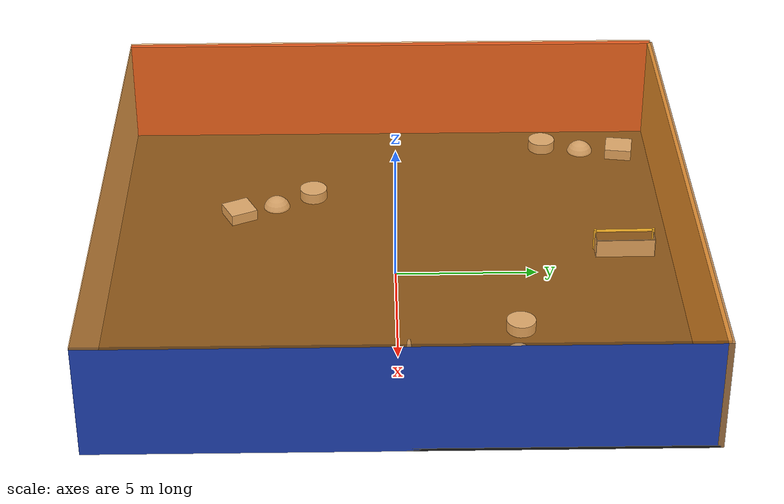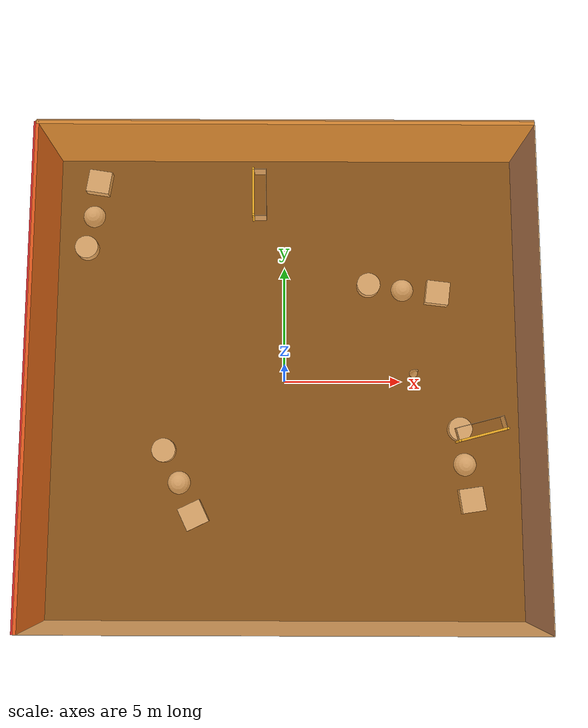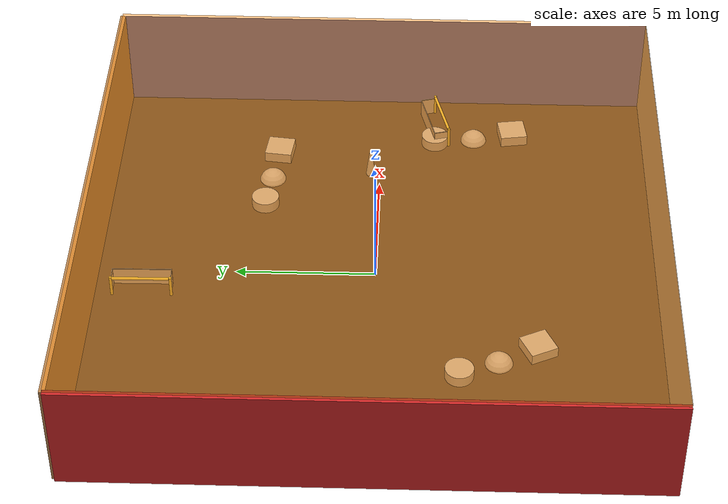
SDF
<sdf version="1.4">
 <world name="default">
  <physics type="ode">
   <max_step_size>0.001</max_step_size>
   <real_time_factor>1</real_time_factor>
   <real_time_update_rate>1000</real_time_update_rate>
   <gravity>0 0 -9.8</gravity>
  </physics>
  <scene><ambient>0.4 0.4 0.4 1</ambient><background>0.7 0.7 0.7 1</background><shadows>1</shadows></scene>
  <model name="Surrounding">
   <static>1</static>
   <link name="Ceiling">
    <collision name="Ceiling_Collision"><geometry><box><size>20 20 0.1</size></box></geometry></collision>
    <visual name="Ceiling_Visual">
     <geometry><box><size>20 20 0.1</size></box></geometry>
     <material>
      <script>
       <uri>file://media/materials/scripts/gazebo.material</uri>
       <name>Gazebo/OrangeTransparent</name>
      </script>
     </material>
    </visual>
    <pose>0 0 4.05 0 0 0</pose>
   </link>
   <link name="Wall_South">
    <collision name="Wall_South_Collision">
     <geometry><box><size>20 0 4</size></box></geometry>
     <pose>0 0 2 0 -0 0</pose>
    </collision>
    <visual name="Wall_South_Visual">
     <pose>0 0 2 0 -0 0</pose>
     <geometry><box><size>20 0 4</size></box></geometry>
     <material>
      <script><uri>file://media/materials/scripts/gazebo.material</uri><name>Gazebo/JointAnchor</name></script>
     </material>
    </visual>
    <velocity_decay><linear>0</linear><angular>0</angular></velocity_decay>
    <pose>0 -10 0 0 -0 0</pose>
   </link>
   <link name="Wall_East">
    <collision name="Wall_21_Collision">
     <geometry><box><size>20 0 4</size></box></geometry>
     <pose>0 0 2 0 -0 0</pose>
    </collision>
    <visual name="Wall_21_Visual">
     <pose>0 0 2 0 -0 0</pose>
     <geometry><box><size>20 0 4</size></box></geometry>
     <material>
      <script><uri>file://media/materials/scripts/gazebo.material</uri><name>Gazebo/BlueGlow</name></script>
     </material>
    </visual>
    <velocity_decay><linear>0</linear><angular>0</angular></velocity_decay>
    <pose>10 0 0 0 -0 1.5708</pose>
   </link>
   <link name="Wall_North">
    <collision name="Wall_22_Collision">
     <geometry><box><size>20 0.2 4</size></box></geometry>
     <pose>0 0 2 0 -0 0</pose>
    </collision>
    <visual name="Wall_22_Visual">
     <pose>0 0 2 0 -0 0</pose>
     <geometry><box><size>20 0.2 4</size></box></geometry>
     <material>
      <script><uri>file://media/materials/scripts/gazebo.material</uri><name>Gazebo/WoodFloor</name></script>
     </material>
    </visual>
    <velocity_decay><linear>0</linear><angular>0</angular></velocity_decay>
    <pose>0 10 0 0 -0 0</pose>
   </link>
   <link name="Wall_West">
    <collision name="Wall_23_Collision">
     <geometry><box><size>20 0.2 4</size></box></geometry>
     <pose>0 0 2 0 -0 0</pose>
    </collision>
    <visual name="Wall_23_Visual">
     <pose>0 0 2 0 -0 0</pose>
     <geometry><box><size>20 0.2 4</size></box></geometry>
     <material>
      <script><uri>file://media/materials/scripts/gazebo.material</uri><name>Gazebo/RedBright</name></script>
     </material>
    </visual>
    <velocity_decay><linear>0</linear><angular>0</angular></velocity_decay>
    <pose>-10 0 0 0 0 -1.5708</pose>
   </link>
   <link name="Ground_link">
    <collision name="collision">
     <pose>0 0 .05 0 -0 0</pose>
     <geometry><box><size>20 20 0.1</size></box></geometry>
    </collision>
    <visual name="visual">
     <pose>0 0 .05 0 -0 0</pose>
     <geometry><box><size>20 20 0.1</size></box></geometry>
     <material>
      <script><uri>file://media/materials/scripts/gazebo.material</uri><name>Gazebo/FlatBlack</name></script>
     </material>
    </visual>
   </link>
   <static>1</static>
  </model>
  <spherical_coordinates>
   <surface_model>EARTH_WGS84</surface_model>
   <latitude_deg>0</latitude_deg>
   <longitude_deg>0</longitude_deg>
   <elevation>0</elevation>
   <heading_deg>0</heading_deg>
  </spherical_coordinates>
  <light name="lightball_0" type="diffuse">
   <diffuse>0.8 0.8 0.8 1</diffuse>
   <specular>0.2 0.2 0.2 1</specular>
   <attenuation>
    <range>100</range>
    <constant>0.7</constant>
    <linear>0.01</linear>
    <quadratic>0.001</quadratic>
   </attenuation>
   <direction>-0.5 0.1 -0.9</direction>
   <pose>-3.81076467202 -4.50682934599 0.747189806692 0 0 0</pose>
  </light>
  <light name="lightball_1" type="diffuse">
   <diffuse>0.8 0.8 0.8 1</diffuse>
   <specular>0.2 0.2 0.2 1</specular>
   <attenuation>
    <range>100</range>
    <constant>0.7</constant>
    <linear>0.01</linear>
    <quadratic>0.001</quadratic>
   </attenuation>
   <direction>-0.5 0.1 -0.9</direction>
   <pose>8.09102388834 0.0923885359286 2.51468545269 0 0 0</pose>
  </light>
  <light name="lightball_2" type="diffuse">
   <diffuse>0.8 0.8 0.8 1</diffuse>
   <specular>0.2 0.2 0.2 1</specular>
   <attenuation>
    <range>100</range>
    <constant>0.7</constant>
    <linear>0.01</linear>
    <quadratic>0.001</quadratic>
   </attenuation>
   <direction>-0.5 0.1 -0.9</direction>
   <pose>-1.75106691912 3.54081756839 0.783585482673 0 0 0</pose>
  </light>
  <light name="lightball_3" type="diffuse">
   <diffuse>0.8 0.8 0.8 1</diffuse>
   <specular>0.2 0.2 0.2 1</specular>
   <attenuation>
    <range>100</range>
    <constant>0.7</constant>
    <linear>0.01</linear>
    <quadratic>0.001</quadratic>
   </attenuation>
   <direction>-0.5 0.1 -0.9</direction>
   <pose>6.62947378819 7.40253110195 3.80011770999 0 0 0</pose>
  </light>
  <light name="lightball_4" type="diffuse">
   <diffuse>0.8 0.8 0.8 1</diffuse>
   <specular>0.2 0.2 0.2 1</specular>
   <attenuation>
    <range>100</range>
    <constant>0.7</constant>
    <linear>0.01</linear>
    <quadratic>0.001</quadratic>
   </attenuation>
   <direction>-0.5 0.1 -0.9</direction>
   <pose>3.53983647494 9.11092695674 2.9209034573 0 0 0</pose>
  </light>
  <light name="lightball_5" type="diffuse">
   <diffuse>0.8 0.8 0.8 1</diffuse>
   <specular>0.2 0.2 0.2 1</specular>
   <attenuation>
    <range>100</range>
    <constant>0.7</constant>
    <linear>0.01</linear>
    <quadratic>0.001</quadratic>
   </attenuation>
   <direction>-0.5 0.1 -0.9</direction>
   <pose>-0.565881635136 -7.00152747586 3.84373353014 0 0 0</pose>
  </light>
  <light name="lightball_6" type="diffuse">
   <diffuse>0.8 0.8 0.8 1</diffuse>
   <specular>0.2 0.2 0.2 1</specular>
   <attenuation>
    <range>100</range>
    <constant>0.7</constant>
    <linear>0.01</linear>
    <quadratic>0.001</quadratic>
   </attenuation>
   <direction>-0.5 0.1 -0.9</direction>
   <pose>1.27025210512 3.3874970509 0.90505980568 0 0 0</pose>
  </light>
  <light name="lightball_7" type="diffuse">
   <diffuse>0.8 0.8 0.8 1</diffuse>
   <specular>0.2 0.2 0.2 1</specular>
   <attenuation>
    <range>100</range>
    <constant>0.7</constant>
    <linear>0.01</linear>
    <quadratic>0.001</quadratic>
   </attenuation>
   <direction>-0.5 0.1 -0.9</direction>
   <pose>-8.60328651788 0.609553535286 2.4815385814 0 0 0</pose>
  </light>
  <light name="lightball_8" type="diffuse">
   <diffuse>0.8 0.8 0.8 1</diffuse>
   <specular>0.2 0.2 0.2 1</specular>
   <attenuation>
    <range>100</range>
    <constant>0.7</constant>
    <linear>0.01</linear>
    <quadratic>0.001</quadratic>
   </attenuation>
   <direction>-0.5 0.1 -0.9</direction>
   <pose>-7.31784912701 -8.18406561665 3.30913195455 0 0 0</pose>
  </light>
  <light name="lightball_9" type="diffuse">
   <diffuse>0.8 0.8 0.8 1</diffuse>
   <specular>0.2 0.2 0.2 1</specular>
   <attenuation>
    <range>100</range>
    <constant>0.7</constant>
    <linear>0.01</linear>
    <quadratic>0.001</quadratic>
   </attenuation>
   <direction>-0.5 0.1 -0.9</direction>
   <pose>9.20428473553 0.0177263464102 0.756724420219 0 0 0</pose>
  </light>
  <light name="lightball_10" type="diffuse">
   <diffuse>0.8 0.8 0.8 1</diffuse>
   <specular>0.2 0.2 0.2 1</specular>
   <attenuation>
    <range>100</range>
    <constant>0.7</constant>
    <linear>0.01</linear>
    <quadratic>0.001</quadratic>
   </attenuation>
   <direction>-0.5 0.1 -0.9</direction>
   <pose>-0.966796326105 -1.00465106237 1.48006522339 0 0 0</pose>
  </light>
  <light name="lightball_11" type="diffuse">
   <diffuse>0.8 0.8 0.8 1</diffuse>
   <specular>0.2 0.2 0.2 1</specular>
   <attenuation>
    <range>100</range>
    <constant>0.7</constant>
    <linear>0.01</linear>
    <quadratic>0.001</quadratic>
   </attenuation>
   <direction>-0.5 0.1 -0.9</direction>
   <pose>-0.909594106127 -0.311811747574 1.73527334704 0 0 0</pose>
  </light>
  <light name="lightball_12" type="diffuse">
   <diffuse>0.8 0.8 0.8 1</diffuse>
   <specular>0.2 0.2 0.2 1</specular>
   <attenuation>
    <range>100</range>
    <constant>0.7</constant>
    <linear>0.01</linear>
    <quadratic>0.001</quadratic>
   </attenuation>
   <direction>-0.5 0.1 -0.9</direction>
   <pose>-2.94614779886 0.648580845358 2.11075259313 0 0 0</pose>
  </light>
  <include>
   <uri>model://textured_shapes</uri>
   <pose>-8.40302188457 7.3185323059 0 0 0 2.98804251977</pose>
  </include>
  <include>
   <uri>model://textured_shapes</uri>
   <pose>-4.44177037657 -4.33225306106 0 0 0 0.445554616578</pose>
  </include>
  <include>
   <uri>model://robocup_3Dsim_goal</uri>
   <pose>-1.37958033535 8.23172462627 0 0 0 0.0124755636383</pose>
  </include>
  <include>
   <uri>model://construction_cone</uri>
   <pose>5.54850035278 0.351408349186 0 0 0 1.50938488427</pose>
  </include>
  <include>
   <uri>model://textured_shapes</uri>
   <pose>5.11738482446 4.02109814799 0 0 0 1.45213950526</pose>
  </include>
  <include>
   <uri>model://textured_shapes</uri>
   <pose>7.66038464588 -3.53942641467 0 0 0 0.147428686063</pose>
  </include>
  <include>
   <uri>model://robocup_3Dsim_goal</uri>
   <pose>8.34880577551 -2.31767220345 0 0 0 1.82696037705</pose>
  </include>
 </world>
</sdf>

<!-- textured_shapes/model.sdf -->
<sdf version="1.6">
  <model name="textured_shapes">
    <pose>0 0 0.5 0 0 0</pose>
    <link name="box">
      <pose>0 -1.5 0 0 0 0</pose>
      <collision name="collision">
        <geometry>
          <box>
            <size>1 1 1</size>
          </box>
        </geometry>
      </collision>
      <visual name="visual">
        <geometry>
          <box>
            <size>1 1 1</size>
          </box>
        </geometry>
        <material>
          <script>
            <uri>model://../model_source/models/textured_shapes/materials/scripts</uri>
            <uri>model://../model_source/models/textured_shapes/materials/textures</uri>
            <name>TexturedShape/Squares</name>
          </script>
        </material>
      </visual>
    </link>
    <link name="sphere">
      <collision name="collision">
        <geometry>
          <sphere>
            <radius>0.5</radius>
          </sphere>
        </geometry>
      </collision>
      <visual name="visual">
        <geometry>
          <sphere>
            <radius>0.5</radius>
          </sphere>
        </geometry>
        <material>
          <script>
            <uri>model://../model_source/models/textured_shapes/materials/scripts</uri>
            <uri>model://../model_source/models/textured_shapes/materials/textures</uri>
            <name>TexturedShape/Squares</name>
          </script>
        </material>
      </visual>
    </link>
    <link name="cylinder">
      <pose>0 1.5 0 0 0 0</pose>
      <collision name="collision">
        <geometry>
          <cylinder>
            <radius>0.5</radius>
            <length>1</length>
          </cylinder>
        </geometry>
      </collision>
      <visual name="visual">
        <geometry>
          <cylinder>
            <radius>0.5</radius>
            <length>1</length>
          </cylinder>
        </geometry>
        <material>
          <script>
            <uri>model://../model_source/models/textured_shapes/materials/scripts</uri>
            <uri>model://../model_source/models/textured_shapes/materials/textures</uri>
            <name>TexturedShape/Squares</name>
          </script>
        </material>
      </visual>
    </link>
  </model>
</sdf>

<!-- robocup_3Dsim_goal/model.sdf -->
<sdf version="1.5">
  <model name="robocup_3d_goal">
    <static>true</static>
    <link name="left_post">
      <pose>0 1.05 0.45 0 0 0</pose>
      <collision name="collision">
        <geometry>
          <cylinder>
            <radius>0.05</radius>
            <length>0.9</length>
          </cylinder>
        </geometry>
      </collision>
      <visual name="visual">
        <geometry>
          <cylinder>
            <radius>0.05</radius>
            <length>0.9</length>
          </cylinder>
        </geometry>
        <material>
          <script>
            <uri>file://media/materials/scripts/gazebo.material</uri>
            <name>Gazebo/ZincYellow</name>
          </script>
        </material>
      </visual>
    </link>
    <link name="left_support_horiz_lower">
      <pose>0.30 1.05 0.01 0 0 0</pose>
      <collision name="collision">
        <geometry>
          <box>
            <size>0.50 0.02 0.02</size>
          </box>
        </geometry>
      </collision>
      <visual name="visual">
        <geometry>
          <box>
            <size>0.50 0.02 0.02</size>
          </box>
        </geometry>
        <material>
          <script>
            <uri>file://media/materials/scripts/gazebo.material</uri>
            <name>Gazebo/White</name>
          </script>
        </material>
      </visual>
    </link>
    <link name="left_support_horiz_upper">
      <pose>0.30 1.05 0.79 0 0 0</pose>
      <collision name="collision">
        <geometry>
          <box>
            <size>0.50 0.02 0.02</size>
          </box>
        </geometry>
      </collision>
      <visual name="visual">
        <geometry>
          <box>
            <size>0.50 0.02 0.02</size>
          </box>
        </geometry>
        <material>
          <script>
            <uri>file://media/materials/scripts/gazebo.material</uri>
            <name>Gazebo/White</name>
          </script>
        </material>
      </visual>
    </link>
    <link name="left_support_vertical">
      <pose>0.56 1.05 0.4 0 1.5708 0</pose>
      <collision name="collision">
        <geometry>
          <box>
            <size>0.80 0.02 0.02</size>
          </box>
        </geometry>
      </collision>
      <visual name="visual">
        <geometry>
          <box>
            <size>0.80 0.02 0.02</size>
          </box>
        </geometry>
        <material>
          <script>
            <uri>file://media/materials/scripts/gazebo.material</uri>
            <name>Gazebo/White</name>
          </script>
        </material>
      </visual>
    </link>
    <link name="right_support_horiz_lower">
      <pose>0.30 -1.05 0.01 0 0 0</pose>
      <collision name="collision">
        <geometry>
          <box>
            <size>0.50 0.02 0.02</size>
          </box>
        </geometry>
      </collision>
      <visual name="visual">
        <geometry>
          <box>
            <size>0.50 0.02 0.02</size>
          </box>
        </geometry>
        <material>
          <script>
            <uri>file://media/materials/scripts/gazebo.material</uri>
            <name>Gazebo/White</name>
          </script>
        </material>
      </visual>
    </link>
    <link name="right_support_horiz_upper">
      <pose>0.30 -1.05 0.79 0 0 0</pose>
      <collision name="collision">
        <geometry>
          <box>
            <size>0.50 0.02 0.02</size>
          </box>
        </geometry>
      </collision>
      <visual name="visual">
        <geometry>
          <box>
            <size>0.50 0.02 0.02</size>
          </box>
        </geometry>
        <material>
          <script>
            <uri>file://media/materials/scripts/gazebo.material</uri>
            <name>Gazebo/White</name>
          </script>
        </material>
      </visual>
    </link>
    <link name="right_support_vertical">
      <pose>0.56 -1.05 0.4 0 1.5708 0</pose>
      <collision name="collision">
        <geometry>
          <box>
            <size>0.80 0.02 0.02</size>
          </box>
        </geometry>
      </collision>
      <visual name="visual">
        <geometry>
          <box>
            <size>0.80 0.02 0.02</size>
          </box>
        </geometry>
        <material>
          <script>
            <uri>file://media/materials/scripts/gazebo.material</uri>
            <name>Gazebo/White</name>
          </script>
        </material>
      </visual>
    </link>
    <link name="center_support_horiz_lower">
      <pose>0.56 0 0.01 0 1.5708 0</pose>
      <collision name="collision">
        <geometry>
          <box>
            <size>0.02 2.08 0.02</size>
          </box>
        </geometry>
      </collision>
      <visual name="visual">
        <geometry>
          <box>
            <size>0.02 2.08 0.02</size>
          </box>
        </geometry>
        <material>
          <script>
            <uri>file://media/materials/scripts/gazebo.material</uri>
            <name>Gazebo/White</name>
          </script>
        </material>
      </visual>
    </link>
    <link name="center_support_horiz_upper">
      <pose>0.56 0 0.79 0 1.5708 0</pose>
      <collision name="collision">
        <geometry>
          <box>
            <size>0.02 2.08 0.02</size>
          </box>
        </geometry>
      </collision>
      <visual name="visual">
        <geometry>
          <box>
            <size>0.02 2.08 0.02</size>
          </box>
        </geometry>
        <material>
          <script>
            <uri>file://media/materials/scripts/gazebo.material</uri>
            <name>Gazebo/White</name>
          </script>
        </material>
      </visual>
    </link>
    <link name="right_post">
      <pose>0 -1.05 0.45 0 0 0</pose>
      <collision name="collision">
        <geometry>
          <cylinder>
            <radius>0.05</radius>
            <length>0.9</length>
          </cylinder>
        </geometry>
      </collision>
      <visual name="visual">
        <geometry>
          <cylinder>
            <radius>0.05</radius>
            <length>0.9</length>
          </cylinder>
        </geometry>
        <material>
          <script>
            <uri>file://media/materials/scripts/gazebo.material</uri>
            <name>Gazebo/ZincYellow</name>
          </script>
        </material>
      </visual>
    </link>
    <link name="crossbar">
      <pose>0 0 0.85 1.57 1.57 0</pose>
      <collision name="collision">
        <geometry>
          <cylinder>
            <radius>0.05</radius>
            <length>2.0</length>
          </cylinder>
        </geometry>
      </collision>
      <visual name="visual">
        <geometry>
          <cylinder>
            <radius>0.05</radius>
            <length>2.0</length>
          </cylinder>
        </geometry>
        <material>
          <script>
            <uri>file://media/materials/scripts/gazebo.material</uri>
            <name>Gazebo/ZincYellow</name>
          </script>
        </material>
      </visual>
    </link>
    <link name="center_net">
      <pose>0.56 0 0.40 0 0 0</pose>
      <collision name="collision">
        <geometry>
          <box>
            <size>0.01 2.1 0.80</size>
          </box>
        </geometry>
      </collision>
      <visual name="visual">
        <geometry>
          <box>
            <size>0.01 2.1 0.80</size>
          </box>
        </geometry>
        <material>
          <script>
            <uri>model://../model_source/models/robocup09_spl_field/materials/scripts/</uri>
            <uri>model://../model_source/models/robocup09_spl_field/materials/textures/</uri>
            <name>RoboCup/Net</name>
          </script>
        </material>
      </visual>
    </link>
    <link name="left_net">
      <pose>0.30 1.05 0.40 0 0 0</pose>
      <collision name="collision">
        <geometry>
          <box>
            <size>0.50 0.01 0.76</size>
          </box>
        </geometry>
      </collision>
      <visual name="visual">
        <geometry>
          <box>
            <size>0.50 0.01 0.76</size>
          </box>
        </geometry>
        <material>
          <script>
            <uri>model://../model_source/models/robocup09_spl_field/materials/scripts/</uri>
            <uri>model://../model_source/models/robocup09_spl_field/materials/textures/</uri>
            <name>RoboCup/Net</name>
          </script>
        </material>
      </visual>
    </link>
    <link name="right_net">
      <pose>0.30 -1.05 0.40 0 0 0</pose>
      <collision name="collision">
        <geometry>
          <box>
            <size>0.50 0.01 0.76</size>
          </box>
        </geometry>
      </collision>
      <visual name="visual">
        <geometry>
          <box>
            <size>0.50 0.01 0.76</size>
          </box>
        </geometry>
        <material>
          <script>
            <uri>model://../model_source/models/robocup09_spl_field/materials/scripts/</uri>
            <uri>model://../model_source/models/robocup09_spl_field/materials/textures/</uri>
            <name>RoboCup/Net</name>
          </script>
        </material>
      </visual>
    </link>
  </model>
</sdf>

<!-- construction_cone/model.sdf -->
<sdf version="1.5">
  <model name="Construction Cone">
    <link name="link">
      <collision name="collision">
        <geometry>
          <mesh>
            <scale>10 10 10</scale>
            <uri>file://isr-testbed/construction_cone/meshes/construction_cone.dae</uri>
          </mesh>
        </geometry>
      </collision>
      <visual name="visual">
        <geometry>
          <mesh>
            <scale>10 10 10</scale>
            <uri>file://isr-testbed/construction_cone/meshes/construction_cone.dae</uri>
          </mesh>
        </geometry>
      </visual>
    </link>
  </model>
</sdf>
